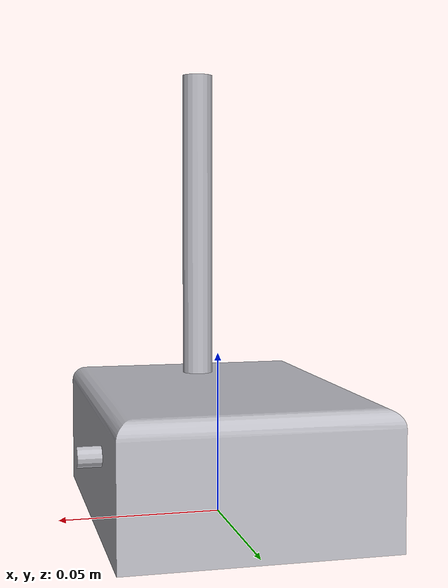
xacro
<?xml version="1.0" ?>
<robot name="rover" xmlns:xacro="http://www.ros.org/wiki/xacro">

<xacro:include filename="$(find rover_description)/urdf/materials.xacro" />
<xacro:include filename="$(find rover_description)/urdf/rover.trans" />
<xacro:include filename="$(find rover_description)/urdf/rover.gazebo" />
<link name="base_link">
  <inertial>
    <origin xyz="-6.34662772009467e-18 -0.0006300564868981357 0.02143524040651141" rpy="0 0 0"/>
    <mass value="2.8123334642397255"/>
    <inertia ixx="0.003526" iyy="0.002174" izz="0.004278" ixy="-0.0" iyz="0.000127" ixz="-0.0"/>
  </inertial>
  <visual>
    <origin xyz="0 0 0" rpy="0 0 0"/>
    <geometry>
      <mesh filename="package://rover_description/meshes/base_link.stl" scale="0.001 0.001 0.001"/>
    </geometry>
    <material name="silver"/>
  </visual>
  <collision>
    <origin xyz="0 0 0" rpy="0 0 0"/>
    <geometry>
      <mesh filename="package://rover_description/meshes/base_link.stl" scale="0.001 0.001 0.001"/>
    </geometry>
  </collision>
</link>

</robot>

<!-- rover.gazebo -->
<robot name="rover" xmlns:xacro="http://www.ros.org/wiki/xacro" >

<xacro:property name="body_color" value="Gazebo/Silver" />

<gazebo>
  <plugin name="control" filename="libgazebo_ros_control.so"/>
</gazebo>
<gazebo reference="base_link">
  <material>${body_color}</material>
  <mu1>0.2</mu1>
  <mu2>0.2</mu2>
  <selfCollide>true</selfCollide>
  <gravity>true</gravity>
</gazebo>

</robot>
